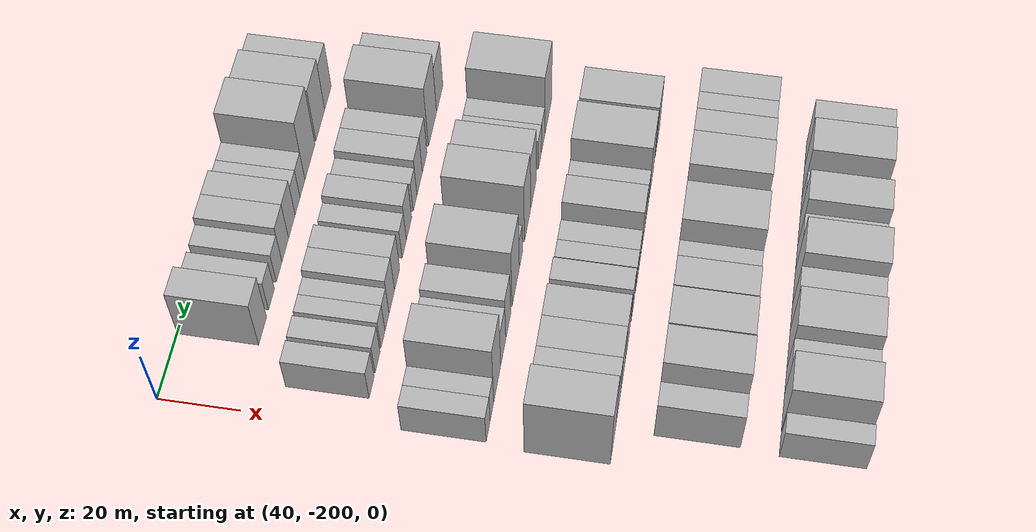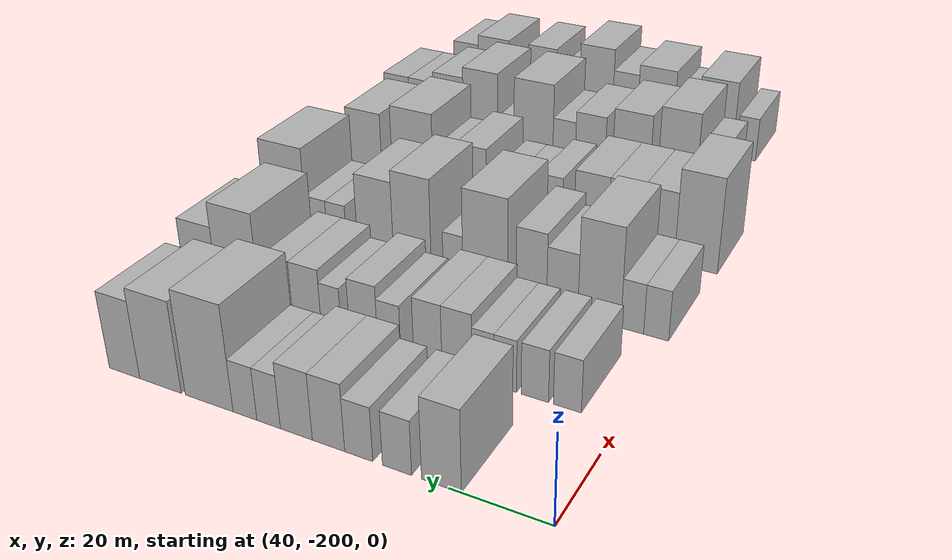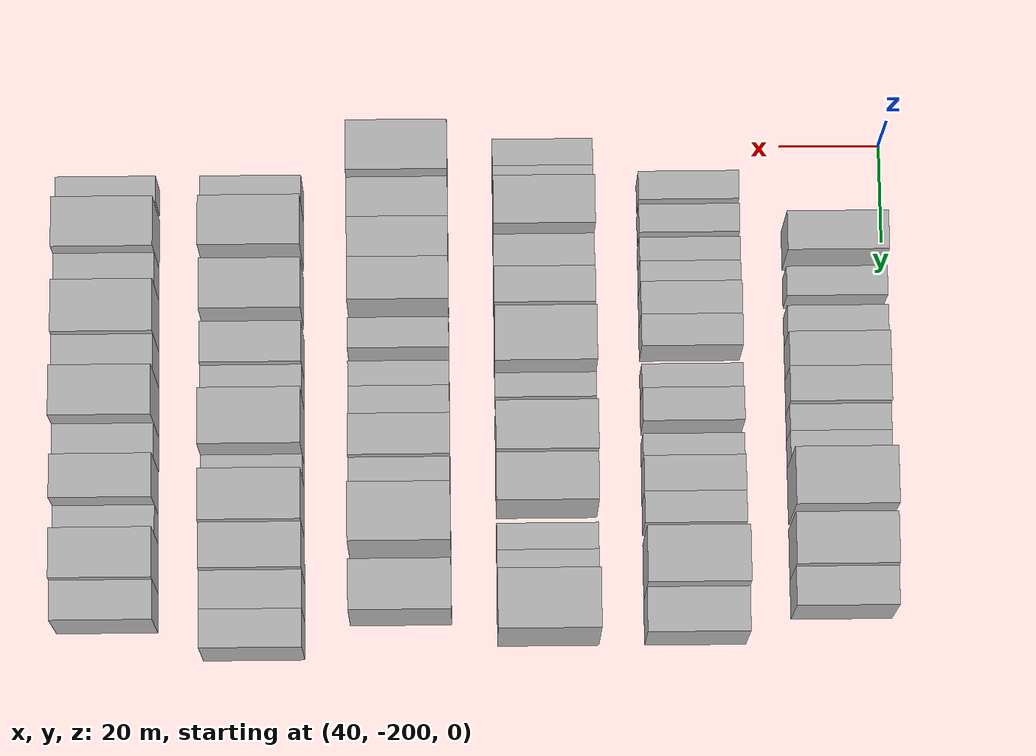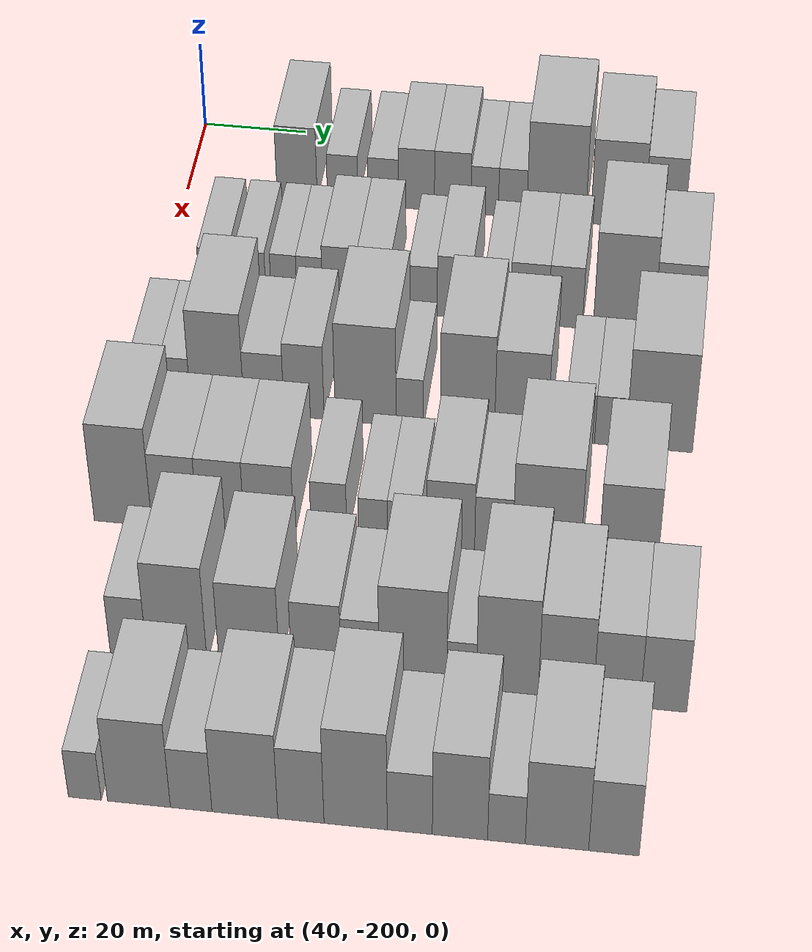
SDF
<sdf version="1.6">
 <world name="default">
  <model name="building_34">
   <static>1</static>
   <pose>50.0000 -178.4837 0 0.000000 0.000000 0.000000</pose>
   <link name="link">
    <pose>0 0 9.00 0 0 0</pose>
    <collision name="collision"><geometry><box><size>20.0000 7.8306 18.0000</size></box></geometry></collision>
    <visual name="visual">
     <cast_shadows>0</cast_shadows>
     <geometry><box><size>20.0000 7.8306 18.0000</size></box></geometry>
     <material>
      <script>
       <uri>model://HANNAS_wall/materials/scripts</uri>
       <uri>model://HANNAS_wall/materials/textures</uri>
       <name>vrc/HANNAS_wall</name>
      </script>
     </material>
    </visual>
   </link>
  </model>
  <model name="building_35">
   <static>1</static>
   <pose>50.0000 -169.5994 0 0.000000 0.000000 0.000000</pose>
   <link name="link">
    <pose>0 0 6.00 0 0 0</pose>
    <collision name="collision"><geometry><box><size>20.0000 5.9381 12.0000</size></box></geometry></collision>
    <visual name="visual">
     <cast_shadows>0</cast_shadows>
     <geometry><box><size>20.0000 5.9381 12.0000</size></box></geometry>
     <material>
      <script>
       <uri>model://HANNAS_wall/materials/scripts</uri>
       <uri>model://HANNAS_wall/materials/textures</uri>
       <name>vrc/HANNAS_wall</name>
      </script>
     </material>
    </visual>
   </link>
  </model>
  <model name="building_36">
   <static>1</static>
   <pose>50.0000 -161.6855 0 0.000000 0.000000 0.000000</pose>
   <link name="link">
    <pose>0 0 6.00 0 0 0</pose>
    <collision name="collision"><geometry><box><size>20.0000 5.8895 12.0000</size></box></geometry></collision>
    <visual name="visual">
     <cast_shadows>0</cast_shadows>
     <geometry><box><size>20.0000 5.8895 12.0000</size></box></geometry>
     <material>
      <script>
       <uri>model://HANNAS_wall/materials/scripts</uri>
       <uri>model://HANNAS_wall/materials/textures</uri>
       <name>vrc/HANNAS_wall</name>
      </script>
     </material>
    </visual>
   </link>
  </model>
  <model name="building_37">
   <static>1</static>
   <pose>50.0000 -155.2614 0 0.000000 0.000000 0.000000</pose>
   <link name="link">
    <pose>0 0 7.50 0 0 0</pose>
    <collision name="collision"><geometry><box><size>20.0000 6.9588 15.0000</size></box></geometry></collision>
    <visual name="visual">
     <cast_shadows>0</cast_shadows>
     <geometry><box><size>20.0000 6.9588 15.0000</size></box></geometry>
     <material>
      <script>
       <uri>model://HANNAS_wall/materials/scripts</uri>
       <uri>model://HANNAS_wall/materials/textures</uri>
       <name>vrc/HANNAS_wall</name>
      </script>
     </material>
    </visual>
   </link>
  </model>
  <model name="building_38">
   <static>1</static>
   <pose>50.0000 -148.2587 0 0.000000 0.000000 0.000000</pose>
   <link name="link">
    <pose>0 0 7.50 0 0 0</pose>
    <collision name="collision"><geometry><box><size>20.0000 7.0465 15.0000</size></box></geometry></collision>
    <visual name="visual">
     <cast_shadows>0</cast_shadows>
     <geometry><box><size>20.0000 7.0465 15.0000</size></box></geometry>
     <material>
      <script>
       <uri>model://HANNAS_wall/materials/scripts</uri>
       <uri>model://HANNAS_wall/materials/textures</uri>
       <name>vrc/HANNAS_wall</name>
      </script>
     </material>
    </visual>
   </link>
  </model>
  <model name="building_39">
   <static>1</static>
   <pose>50.0000 -142.0848 0 0.000000 0.000000 0.000000</pose>
   <link name="link">
    <pose>0 0 6.00 0 0 0</pose>
    <collision name="collision"><geometry><box><size>20.0000 5.3014 12.0000</size></box></geometry></collision>
    <visual name="visual">
     <cast_shadows>0</cast_shadows>
     <geometry><box><size>20.0000 5.3014 12.0000</size></box></geometry>
     <material>
      <script>
       <uri>model://HANNAS_wall/materials/scripts</uri>
       <uri>model://HANNAS_wall/materials/textures</uri>
       <name>vrc/HANNAS_wall</name>
      </script>
     </material>
    </visual>
   </link>
  </model>
  <model name="building_40">
   <static>1</static>
   <pose>50.0000 -136.6919 0 0.000000 0.000000 0.000000</pose>
   <link name="link">
    <pose>0 0 6.00 0 0 0</pose>
    <collision name="collision"><geometry><box><size>20.0000 5.4843 12.0000</size></box></geometry></collision>
    <visual name="visual">
     <cast_shadows>0</cast_shadows>
     <geometry><box><size>20.0000 5.4843 12.0000</size></box></geometry>
     <material>
      <script>
       <uri>model://HANNAS_wall/materials/scripts</uri>
       <uri>model://HANNAS_wall/materials/textures</uri>
       <name>vrc/HANNAS_wall</name>
      </script>
     </material>
    </visual>
   </link>
  </model>
  <model name="building_41">
   <static>1</static>
   <pose>50.0000 -128.2936 0 0.000000 0.000000 0.000000</pose>
   <link name="link">
    <pose>0 0 12.00 0 0 0</pose>
    <collision name="collision"><geometry><box><size>20.0000 11.3123 24.0000</size></box></geometry></collision>
    <visual name="visual">
     <cast_shadows>0</cast_shadows>
     <geometry><box><size>20.0000 11.3123 24.0000</size></box></geometry>
     <material>
      <script>
       <uri>model://HANNAS_wall/materials/scripts</uri>
       <uri>model://HANNAS_wall/materials/textures</uri>
       <name>vrc/HANNAS_wall</name>
      </script>
     </material>
    </visual>
   </link>
  </model>
  <model name="building_42">
   <static>1</static>
   <pose>50.0000 -116.5300 0 0.000000 0.000000 0.000000</pose>
   <link name="link">
    <pose>0 0 10.50 0 0 0</pose>
    <collision name="collision"><geometry><box><size>20.0000 10.2149 21.0000</size></box></geometry></collision>
    <visual name="visual">
     <cast_shadows>0</cast_shadows>
     <geometry><box><size>20.0000 10.2149 21.0000</size></box></geometry>
     <material>
      <script>
       <uri>model://HANNAS_wall/materials/scripts</uri>
       <uri>model://HANNAS_wall/materials/textures</uri>
       <name>vrc/HANNAS_wall</name>
      </script>
     </material>
    </visual>
   </link>
  </model>
  <model name="building_43">
   <static>1</static>
   <pose>50.0000 -107.5657 0 0.000000 0.000000 0.000000</pose>
   <link name="link">
    <pose>0 0 9.00 0 0 0</pose>
    <collision name="collision"><geometry><box><size>20.0000 7.7137 18.0000</size></box></geometry></collision>
    <visual name="visual">
     <cast_shadows>0</cast_shadows>
     <geometry><box><size>20.0000 7.7137 18.0000</size></box></geometry>
     <material>
      <script>
       <uri>model://HANNAS_wall/materials/scripts</uri>
       <uri>model://HANNAS_wall/materials/textures</uri>
       <name>vrc/HANNAS_wall</name>
      </script>
     </material>
    </visual>
   </link>
  </model>
  <model name="building_141">
   <static>1</static>
   <pose>79.0000 -189.4149 0 0.000000 0.000000 0.000000</pose>
   <link name="link">
    <pose>0 0 6.00 0 0 0</pose>
    <collision name="collision"><geometry><box><size>20.0000 5.7581 12.0000</size></box></geometry></collision>
    <visual name="visual">
     <cast_shadows>0</cast_shadows>
     <geometry><box><size>20.0000 5.7581 12.0000</size></box></geometry>
     <material>
      <script>
       <uri>model://HANNAS_wall/materials/scripts</uri>
       <uri>model://HANNAS_wall/materials/textures</uri>
       <name>vrc/HANNAS_wall</name>
      </script>
     </material>
    </visual>
   </link>
  </model>
  <model name="building_142">
   <static>1</static>
   <pose>79.0000 -182.6653 0 0.000000 0.000000 0.000000</pose>
   <link name="link">
    <pose>0 0 6.00 0 0 0</pose>
    <collision name="collision"><geometry><box><size>20.0000 5.7409 12.0000</size></box></geometry></collision>
    <visual name="visual">
     <cast_shadows>0</cast_shadows>
     <geometry><box><size>20.0000 5.7409 12.0000</size></box></geometry>
     <material>
      <script>
       <uri>model://HANNAS_wall/materials/scripts</uri>
       <uri>model://HANNAS_wall/materials/textures</uri>
       <name>vrc/HANNAS_wall</name>
      </script>
     </material>
    </visual>
   </link>
  </model>
  <model name="building_143">
   <static>1</static>
   <pose>79.0000 -176.3826 0 0.000000 0.000000 0.000000</pose>
   <link name="link">
    <pose>0 0 6.00 0 0 0</pose>
    <collision name="collision"><geometry><box><size>20.0000 4.8246 12.0000</size></box></geometry></collision>
    <visual name="visual">
     <cast_shadows>0</cast_shadows>
     <geometry><box><size>20.0000 4.8246 12.0000</size></box></geometry>
     <material>
      <script>
       <uri>model://HANNAS_wall/materials/scripts</uri>
       <uri>model://HANNAS_wall/materials/textures</uri>
       <name>vrc/HANNAS_wall</name>
      </script>
     </material>
    </visual>
   </link>
  </model>
  <model name="building_144">
   <static>1</static>
   <pose>79.0000 -171.5681 0 0.000000 0.000000 0.000000</pose>
   <link name="link">
    <pose>0 0 6.00 0 0 0</pose>
    <collision name="collision"><geometry><box><size>20.0000 4.8044 12.0000</size></box></geometry></collision>
    <visual name="visual">
     <cast_shadows>0</cast_shadows>
     <geometry><box><size>20.0000 4.8044 12.0000</size></box></geometry>
     <material>
      <script>
       <uri>model://HANNAS_wall/materials/scripts</uri>
       <uri>model://HANNAS_wall/materials/textures</uri>
       <name>vrc/HANNAS_wall</name>
      </script>
     </material>
    </visual>
   </link>
  </model>
  <model name="building_145">
   <static>1</static>
   <pose>79.0000 -165.8417 0 0.000000 0.000000 0.000000</pose>
   <link name="link">
    <pose>0 0 7.50 0 0 0</pose>
    <collision name="collision"><geometry><box><size>20.0000 6.6485 15.0000</size></box></geometry></collision>
    <visual name="visual">
     <cast_shadows>0</cast_shadows>
     <geometry><box><size>20.0000 6.6485 15.0000</size></box></geometry>
     <material>
      <script>
       <uri>model://HANNAS_wall/materials/scripts</uri>
       <uri>model://HANNAS_wall/materials/textures</uri>
       <name>vrc/HANNAS_wall</name>
      </script>
     </material>
    </visual>
   </link>
  </model>
  <model name="building_146">
   <static>1</static>
   <pose>79.0000 -159.3244 0 0.000000 0.000000 0.000000</pose>
   <link name="link">
    <pose>0 0 7.50 0 0 0</pose>
    <collision name="collision"><geometry><box><size>20.0000 6.3861 15.0000</size></box></geometry></collision>
    <visual name="visual">
     <cast_shadows>0</cast_shadows>
     <geometry><box><size>20.0000 6.3861 15.0000</size></box></geometry>
     <material>
      <script>
       <uri>model://HANNAS_wall/materials/scripts</uri>
       <uri>model://HANNAS_wall/materials/textures</uri>
       <name>vrc/HANNAS_wall</name>
      </script>
     </material>
    </visual>
   </link>
  </model>
  <model name="building_147">
   <static>1</static>
   <pose>79.0000 -150.4475 0 0.000000 0.000000 0.000000</pose>
   <link name="link">
    <pose>0 0 6.00 0 0 0</pose>
    <collision name="collision"><geometry><box><size>20.0000 5.3677 12.0000</size></box></geometry></collision>
    <visual name="visual">
     <cast_shadows>0</cast_shadows>
     <geometry><box><size>20.0000 5.3677 12.0000</size></box></geometry>
     <material>
      <script>
       <uri>model://HANNAS_wall/materials/scripts</uri>
       <uri>model://HANNAS_wall/materials/textures</uri>
       <name>vrc/HANNAS_wall</name>
      </script>
     </material>
    </visual>
   </link>
  </model>
  <model name="building_148">
   <static>1</static>
   <pose>79.0000 -144.4374 0 0.000000 0.000000 0.000000</pose>
   <link name="link">
    <pose>0 0 7.50 0 0 0</pose>
    <collision name="collision"><geometry><box><size>20.0000 6.6525 15.0000</size></box></geometry></collision>
    <visual name="visual">
     <cast_shadows>0</cast_shadows>
     <geometry><box><size>20.0000 6.6525 15.0000</size></box></geometry>
     <material>
      <script>
       <uri>model://HANNAS_wall/materials/scripts</uri>
       <uri>model://HANNAS_wall/materials/textures</uri>
       <name>vrc/HANNAS_wall</name>
      </script>
     </material>
    </visual>
   </link>
  </model>
  <model name="building_149">
   <static>1</static>
   <pose>79.0000 -136.6509 0 0.000000 0.000000 0.000000</pose>
   <link name="link">
    <pose>0 0 6.00 0 0 0</pose>
    <collision name="collision"><geometry><box><size>20.0000 4.9204 12.0000</size></box></geometry></collision>
    <visual name="visual">
     <cast_shadows>0</cast_shadows>
     <geometry><box><size>20.0000 4.9204 12.0000</size></box></geometry>
     <material>
      <script>
       <uri>model://HANNAS_wall/materials/scripts</uri>
       <uri>model://HANNAS_wall/materials/textures</uri>
       <name>vrc/HANNAS_wall</name>
      </script>
     </material>
    </visual>
   </link>
  </model>
  <model name="building_150">
   <static>1</static>
   <pose>79.0000 -130.6396 0 0.000000 0.000000 0.000000</pose>
   <link name="link">
    <pose>0 0 7.50 0 0 0</pose>
    <collision name="collision"><geometry><box><size>20.0000 7.1022 15.0000</size></box></geometry></collision>
    <visual name="visual">
     <cast_shadows>0</cast_shadows>
     <geometry><box><size>20.0000 7.1022 15.0000</size></box></geometry>
     <material>
      <script>
       <uri>model://HANNAS_wall/materials/scripts</uri>
       <uri>model://HANNAS_wall/materials/textures</uri>
       <name>vrc/HANNAS_wall</name>
      </script>
     </material>
    </visual>
   </link>
  </model>
  <model name="building_151">
   <static>1</static>
   <pose>79.0000 -123.9533 0 0.000000 0.000000 0.000000</pose>
   <link name="link">
    <pose>0 0 7.50 0 0 0</pose>
    <collision name="collision"><geometry><box><size>20.0000 6.2704 15.0000</size></box></geometry></collision>
    <visual name="visual">
     <cast_shadows>0</cast_shadows>
     <geometry><box><size>20.0000 6.2704 15.0000</size></box></geometry>
     <material>
      <script>
       <uri>model://HANNAS_wall/materials/scripts</uri>
       <uri>model://HANNAS_wall/materials/textures</uri>
       <name>vrc/HANNAS_wall</name>
      </script>
     </material>
    </visual>
   </link>
  </model>
  <model name="building_152">
   <static>1</static>
   <pose>79.0000 -113.2577 0 0.000000 0.000000 0.000000</pose>
   <link name="link">
    <pose>0 0 12.00 0 0 0</pose>
    <collision name="collision"><geometry><box><size>20.0000 11.1208 24.0000</size></box></geometry></collision>
    <visual name="visual">
     <cast_shadows>0</cast_shadows>
     <geometry><box><size>20.0000 11.1208 24.0000</size></box></geometry>
     <material>
      <script>
       <uri>model://HANNAS_wall/materials/scripts</uri>
       <uri>model://HANNAS_wall/materials/textures</uri>
       <name>vrc/HANNAS_wall</name>
      </script>
     </material>
    </visual>
   </link>
  </model>
  <model name="building_153">
   <static>1</static>
   <pose>79.0000 -103.2792 0 0.000000 0.000000 0.000000</pose>
   <link name="link">
    <pose>0 0 9.00 0 0 0</pose>
    <collision name="collision"><geometry><box><size>20.0000 8.8362 18.0000</size></box></geometry></collision>
    <visual name="visual">
     <cast_shadows>0</cast_shadows>
     <geometry><box><size>20.0000 8.8362 18.0000</size></box></geometry>
     <material>
      <script>
       <uri>model://HANNAS_wall/materials/scripts</uri>
       <uri>model://HANNAS_wall/materials/textures</uri>
       <name>vrc/HANNAS_wall</name>
      </script>
     </material>
    </visual>
   </link>
  </model>
  <model name="building_254">
   <static>1</static>
   <pose>108.0000 -196.4677 0 0.000000 0.000000 0.000000</pose>
   <link name="link">
    <pose>0 0 6.00 0 0 0</pose>
    <collision name="collision"><geometry><box><size>20.0000 5.4223 12.0000</size></box></geometry></collision>
    <visual name="visual">
     <cast_shadows>0</cast_shadows>
     <geometry><box><size>20.0000 5.4223 12.0000</size></box></geometry>
     <material>
      <script>
       <uri>model://HANNAS_wall/materials/scripts</uri>
       <uri>model://HANNAS_wall/materials/textures</uri>
       <name>vrc/HANNAS_wall</name>
      </script>
     </material>
    </visual>
   </link>
  </model>
  <model name="building_255">
   <static>1</static>
   <pose>108.0000 -191.2411 0 0.000000 0.000000 0.000000</pose>
   <link name="link">
    <pose>0 0 6.00 0 0 0</pose>
    <collision name="collision"><geometry><box><size>20.0000 5.0309 12.0000</size></box></geometry></collision>
    <visual name="visual">
     <cast_shadows>0</cast_shadows>
     <geometry><box><size>20.0000 5.0309 12.0000</size></box></geometry>
     <material>
      <script>
       <uri>model://HANNAS_wall/materials/scripts</uri>
       <uri>model://HANNAS_wall/materials/textures</uri>
       <name>vrc/HANNAS_wall</name>
      </script>
     </material>
    </visual>
   </link>
  </model>
  <model name="building_256">
   <static>1</static>
   <pose>108.0000 -183.8816 0 0.000000 0.000000 0.000000</pose>
   <link name="link">
    <pose>0 0 12.00 0 0 0</pose>
    <collision name="collision"><geometry><box><size>20.0000 9.6881 24.0000</size></box></geometry></collision>
    <visual name="visual">
     <cast_shadows>0</cast_shadows>
     <geometry><box><size>20.0000 9.6881 24.0000</size></box></geometry>
     <material>
      <script>
       <uri>model://HANNAS_wall/materials/scripts</uri>
       <uri>model://HANNAS_wall/materials/textures</uri>
       <name>vrc/HANNAS_wall</name>
      </script>
     </material>
    </visual>
   </link>
  </model>
  <model name="building_257">
   <static>1</static>
   <pose>108.0000 -175.4188 0 0.000000 0.000000 0.000000</pose>
   <link name="link">
    <pose>0 0 7.50 0 0 0</pose>
    <collision name="collision"><geometry><box><size>20.0000 7.2374 15.0000</size></box></geometry></collision>
    <visual name="visual">
     <cast_shadows>0</cast_shadows>
     <geometry><box><size>20.0000 7.2374 15.0000</size></box></geometry>
     <material>
      <script>
       <uri>model://HANNAS_wall/materials/scripts</uri>
       <uri>model://HANNAS_wall/materials/textures</uri>
       <name>vrc/HANNAS_wall</name>
      </script>
     </material>
    </visual>
   </link>
  </model>
  <model name="building_258">
   <static>1</static>
   <pose>108.0000 -168.1896 0 0.000000 0.000000 0.000000</pose>
   <link name="link">
    <pose>0 0 9.00 0 0 0</pose>
    <collision name="collision"><geometry><box><size>20.0000 7.2210 18.0000</size></box></geometry></collision>
    <visual name="visual">
     <cast_shadows>0</cast_shadows>
     <geometry><box><size>20.0000 7.2210 18.0000</size></box></geometry>
     <material>
      <script>
       <uri>model://HANNAS_wall/materials/scripts</uri>
       <uri>model://HANNAS_wall/materials/textures</uri>
       <name>vrc/HANNAS_wall</name>
      </script>
     </material>
    </visual>
   </link>
  </model>
  <model name="building_259">
   <static>1</static>
   <pose>108.0000 -157.1117 0 0.000000 0.000000 0.000000</pose>
   <link name="link">
    <pose>0 0 12.00 0 0 0</pose>
    <collision name="collision"><geometry><box><size>20.0000 10.9350 24.0000</size></box></geometry></collision>
    <visual name="visual">
     <cast_shadows>0</cast_shadows>
     <geometry><box><size>20.0000 10.9350 24.0000</size></box></geometry>
     <material>
      <script>
       <uri>model://HANNAS_wall/materials/scripts</uri>
       <uri>model://HANNAS_wall/materials/textures</uri>
       <name>vrc/HANNAS_wall</name>
      </script>
     </material>
    </visual>
   </link>
  </model>
  <model name="building_260">
   <static>1</static>
   <pose>108.0000 -149.1933 0 0.000000 0.000000 0.000000</pose>
   <link name="link">
    <pose>0 0 6.00 0 0 0</pose>
    <collision name="collision"><geometry><box><size>20.0000 4.9017 12.0000</size></box></geometry></collision>
    <visual name="visual">
     <cast_shadows>0</cast_shadows>
     <geometry><box><size>20.0000 4.9017 12.0000</size></box></geometry>
     <material>
      <script>
       <uri>model://HANNAS_wall/materials/scripts</uri>
       <uri>model://HANNAS_wall/materials/textures</uri>
       <name>vrc/HANNAS_wall</name>
      </script>
     </material>
    </visual>
   </link>
  </model>
  <model name="building_261">
   <static>1</static>
   <pose>108.0000 -138.8889 0 0.000000 0.000000 0.000000</pose>
   <link name="link">
    <pose>0 0 12.00 0 0 0</pose>
    <collision name="collision"><geometry><box><size>20.0000 9.7072 24.0000</size></box></geometry></collision>
    <visual name="visual">
     <cast_shadows>0</cast_shadows>
     <geometry><box><size>20.0000 9.7072 24.0000</size></box></geometry>
     <material>
      <script>
       <uri>model://HANNAS_wall/materials/scripts</uri>
       <uri>model://HANNAS_wall/materials/textures</uri>
       <name>vrc/HANNAS_wall</name>
      </script>
     </material>
    </visual>
   </link>
  </model>
  <model name="building_262">
   <static>1</static>
   <pose>108.0000 -129.2862 0 0.000000 0.000000 0.000000</pose>
   <link name="link">
    <pose>0 0 10.50 0 0 0</pose>
    <collision name="collision"><geometry><box><size>20.0000 9.4983 21.0000</size></box></geometry></collision>
    <visual name="visual">
     <cast_shadows>0</cast_shadows>
     <geometry><box><size>20.0000 9.4983 21.0000</size></box></geometry>
     <material>
      <script>
       <uri>model://HANNAS_wall/materials/scripts</uri>
       <uri>model://HANNAS_wall/materials/textures</uri>
       <name>vrc/HANNAS_wall</name>
      </script>
     </material>
    </visual>
   </link>
  </model>
  <model name="building_263">
   <static>1</static>
   <pose>108.0000 -118.9043 0 0.000000 0.000000 0.000000</pose>
   <link name="link">
    <pose>0 0 6.00 0 0 0</pose>
    <collision name="collision"><geometry><box><size>20.0000 5.2655 12.0000</size></box></geometry></collision>
    <visual name="visual">
     <cast_shadows>0</cast_shadows>
     <geometry><box><size>20.0000 5.2655 12.0000</size></box></geometry>
     <material>
      <script>
       <uri>model://HANNAS_wall/materials/scripts</uri>
       <uri>model://HANNAS_wall/materials/textures</uri>
       <name>vrc/HANNAS_wall</name>
      </script>
     </material>
    </visual>
   </link>
  </model>
  <model name="building_264">
   <static>1</static>
   <pose>108.0000 -113.4975 0 0.000000 0.000000 0.000000</pose>
   <link name="link">
    <pose>0 0 6.00 0 0 0</pose>
    <collision name="collision"><geometry><box><size>20.0000 5.5480 12.0000</size></box></geometry></collision>
    <visual name="visual">
     <cast_shadows>0</cast_shadows>
     <geometry><box><size>20.0000 5.5480 12.0000</size></box></geometry>
     <material>
      <script>
       <uri>model://HANNAS_wall/materials/scripts</uri>
       <uri>model://HANNAS_wall/materials/textures</uri>
       <name>vrc/HANNAS_wall</name>
      </script>
     </material>
    </visual>
   </link>
  </model>
  <model name="building_265">
   <static>1</static>
   <pose>108.0000 -104.8386 0 0.000000 0.000000 0.000000</pose>
   <link name="link">
    <pose>0 0 12.00 0 0 0</pose>
    <collision name="collision"><geometry><box><size>20.0000 11.7698 24.0000</size></box></geometry></collision>
    <visual name="visual">
     <cast_shadows>0</cast_shadows>
     <geometry><box><size>20.0000 11.7698 24.0000</size></box></geometry>
     <material>
      <script>
       <uri>model://HANNAS_wall/materials/scripts</uri>
       <uri>model://HANNAS_wall/materials/textures</uri>
       <name>vrc/HANNAS_wall</name>
      </script>
     </material>
    </visual>
   </link>
  </model>
  <model name="building_363">
   <static>1</static>
   <pose>137.0000 -195.2351 0 0.000000 0.000000 0.000000</pose>
   <link name="link">
    <pose>0 0 12.00 0 0 0</pose>
    <collision name="collision"><geometry><box><size>20.0000 10.0777 24.0000</size></box></geometry></collision>
    <visual name="visual">
     <cast_shadows>0</cast_shadows>
     <geometry><box><size>20.0000 10.0777 24.0000</size></box></geometry>
     <material>
      <script>
       <uri>model://HANNAS_wall/materials/scripts</uri>
       <uri>model://HANNAS_wall/materials/textures</uri>
       <name>vrc/HANNAS_wall</name>
      </script>
     </material>
    </visual>
   </link>
  </model>
  <model name="building_364">
   <static>1</static>
   <pose>137.0000 -186.1933 0 0.000000 0.000000 0.000000</pose>
   <link name="link">
    <pose>0 0 9.00 0 0 0</pose>
    <collision name="collision"><geometry><box><size>20.0000 8.0058 18.0000</size></box></geometry></collision>
    <visual name="visual">
     <cast_shadows>0</cast_shadows>
     <geometry><box><size>20.0000 8.0058 18.0000</size></box></geometry>
     <material>
      <script>
       <uri>model://HANNAS_wall/materials/scripts</uri>
       <uri>model://HANNAS_wall/materials/textures</uri>
       <name>vrc/HANNAS_wall</name>
      </script>
     </material>
    </visual>
   </link>
  </model>
  <model name="building_365">
   <static>1</static>
   <pose>137.0000 -178.1158 0 0.000000 0.000000 0.000000</pose>
   <link name="link">
    <pose>0 0 9.00 0 0 0</pose>
    <collision name="collision"><geometry><box><size>20.0000 8.1493 18.0000</size></box></geometry></collision>
    <visual name="visual">
     <cast_shadows>0</cast_shadows>
     <geometry><box><size>20.0000 8.1493 18.0000</size></box></geometry>
     <material>
      <script>
       <uri>model://HANNAS_wall/materials/scripts</uri>
       <uri>model://HANNAS_wall/materials/textures</uri>
       <name>vrc/HANNAS_wall</name>
      </script>
     </material>
    </visual>
   </link>
  </model>
  <model name="building_366">
   <static>1</static>
   <pose>137.0000 -169.7463 0 0.000000 0.000000 0.000000</pose>
   <link name="link">
    <pose>0 0 9.00 0 0 0</pose>
    <collision name="collision"><geometry><box><size>20.0000 8.5898 18.0000</size></box></geometry></collision>
    <visual name="visual">
     <cast_shadows>0</cast_shadows>
     <geometry><box><size>20.0000 8.5898 18.0000</size></box></geometry>
     <material>
      <script>
       <uri>model://HANNAS_wall/materials/scripts</uri>
       <uri>model://HANNAS_wall/materials/textures</uri>
       <name>vrc/HANNAS_wall</name>
      </script>
     </material>
    </visual>
   </link>
  </model>
  <model name="building_367">
   <static>1</static>
   <pose>137.0000 -159.3824 0 0.000000 0.000000 0.000000</pose>
   <link name="link">
    <pose>0 0 7.50 0 0 0</pose>
    <collision name="collision"><geometry><box><size>20.0000 6.1380 15.0000</size></box></geometry></collision>
    <visual name="visual">
     <cast_shadows>0</cast_shadows>
     <geometry><box><size>20.0000 6.1380 15.0000</size></box></geometry>
     <material>
      <script>
       <uri>model://HANNAS_wall/materials/scripts</uri>
       <uri>model://HANNAS_wall/materials/textures</uri>
       <name>vrc/HANNAS_wall</name>
      </script>
     </material>
    </visual>
   </link>
  </model>
  <model name="building_368">
   <static>1</static>
   <pose>137.0000 -151.8106 0 0.000000 0.000000 0.000000</pose>
   <link name="link">
    <pose>0 0 6.00 0 0 0</pose>
    <collision name="collision"><geometry><box><size>20.0000 5.0058 12.0000</size></box></geometry></collision>
    <visual name="visual">
     <cast_shadows>0</cast_shadows>
     <geometry><box><size>20.0000 5.0058 12.0000</size></box></geometry>
     <material>
      <script>
       <uri>model://HANNAS_wall/materials/scripts</uri>
       <uri>model://HANNAS_wall/materials/textures</uri>
       <name>vrc/HANNAS_wall</name>
      </script>
     </material>
    </visual>
   </link>
  </model>
  <model name="building_369">
   <static>1</static>
   <pose>137.0000 -146.4496 0 0.000000 0.000000 0.000000</pose>
   <link name="link">
    <pose>0 0 6.00 0 0 0</pose>
    <collision name="collision"><geometry><box><size>20.0000 5.7163 12.0000</size></box></geometry></collision>
    <visual name="visual">
     <cast_shadows>0</cast_shadows>
     <geometry><box><size>20.0000 5.7163 12.0000</size></box></geometry>
     <material>
      <script>
       <uri>model://HANNAS_wall/materials/scripts</uri>
       <uri>model://HANNAS_wall/materials/textures</uri>
       <name>vrc/HANNAS_wall</name>
      </script>
     </material>
    </visual>
   </link>
  </model>
  <model name="building_370">
   <static>1</static>
   <pose>137.0000 -138.4995 0 0.000000 0.000000 0.000000</pose>
   <link name="link">
    <pose>0 0 9.00 0 0 0</pose>
    <collision name="collision"><geometry><box><size>20.0000 8.1838 18.0000</size></box></geometry></collision>
    <visual name="visual">
     <cast_shadows>0</cast_shadows>
     <geometry><box><size>20.0000 8.1838 18.0000</size></box></geometry>
     <material>
      <script>
       <uri>model://HANNAS_wall/materials/scripts</uri>
       <uri>model://HANNAS_wall/materials/textures</uri>
       <name>vrc/HANNAS_wall</name>
      </script>
     </material>
    </visual>
   </link>
  </model>
  <model name="building_371">
   <static>1</static>
   <pose>137.0000 -131.1687 0 0.000000 0.000000 0.000000</pose>
   <link name="link">
    <pose>0 0 7.50 0 0 0</pose>
    <collision name="collision"><geometry><box><size>20.0000 6.4778 15.0000</size></box></geometry></collision>
    <visual name="visual">
     <cast_shadows>0</cast_shadows>
     <geometry><box><size>20.0000 6.4778 15.0000</size></box></geometry>
     <material>
      <script>
       <uri>model://HANNAS_wall/materials/scripts</uri>
       <uri>model://HANNAS_wall/materials/textures</uri>
       <name>vrc/HANNAS_wall</name>
      </script>
     </material>
    </visual>
   </link>
  </model>
  <model name="building_372">
   <static>1</static>
   <pose>137.0000 -122.1382 0 0.000000 0.000000 0.000000</pose>
   <link name="link">
    <pose>0 0 12.00 0 0 0</pose>
    <collision name="collision"><geometry><box><size>20.0000 11.5832 24.0000</size></box></geometry></collision>
    <visual name="visual">
     <cast_shadows>0</cast_shadows>
     <geometry><box><size>20.0000 11.5832 24.0000</size></box></geometry>
     <material>
      <script>
       <uri>model://HANNAS_wall/materials/scripts</uri>
       <uri>model://HANNAS_wall/materials/textures</uri>
       <name>vrc/HANNAS_wall</name>
      </script>
     </material>
    </visual>
   </link>
  </model>
  <model name="building_373">
   <static>1</static>
   <pose>137.0000 -108.3390 0 0.000000 0.000000 0.000000</pose>
   <link name="link">
    <pose>0 0 10.50 0 0 0</pose>
    <collision name="collision"><geometry><box><size>20.0000 10.0152 21.0000</size></box></geometry></collision>
    <visual name="visual">
     <cast_shadows>0</cast_shadows>
     <geometry><box><size>20.0000 10.0152 21.0000</size></box></geometry>
     <material>
      <script>
       <uri>model://HANNAS_wall/materials/scripts</uri>
       <uri>model://HANNAS_wall/materials/textures</uri>
       <name>vrc/HANNAS_wall</name>
      </script>
     </material>
    </visual>
   </link>
  </model>
  <model name="building_482">
   <static>1</static>
   <pose>166.0000 -188.4294 0 0.000000 0.000000 0.000000</pose>
   <link name="link">
    <pose>0 0 7.50 0 0 0</pose>
    <collision name="collision"><geometry><box><size>20.0000 6.1455 15.0000</size></box></geometry></collision>
    <visual name="visual">
     <cast_shadows>0</cast_shadows>
     <geometry><box><size>20.0000 6.1455 15.0000</size></box></geometry>
     <material>
      <script>
       <uri>model://HANNAS_wall/materials/scripts</uri>
       <uri>model://HANNAS_wall/materials/textures</uri>
       <name>vrc/HANNAS_wall</name>
      </script>
     </material>
    </visual>
   </link>
  </model>
  <model name="building_483">
   <static>1</static>
   <pose>166.0000 -180.3528 0 0.000000 0.000000 0.000000</pose>
   <link name="link">
    <pose>0 0 12.00 0 0 0</pose>
    <collision name="collision"><geometry><box><size>20.0000 10.0078 24.0000</size></box></geometry></collision>
    <visual name="visual">
     <cast_shadows>0</cast_shadows>
     <geometry><box><size>20.0000 10.0078 24.0000</size></box></geometry>
     <material>
      <script>
       <uri>model://HANNAS_wall/materials/scripts</uri>
       <uri>model://HANNAS_wall/materials/textures</uri>
       <name>vrc/HANNAS_wall</name>
      </script>
     </material>
    </visual>
   </link>
  </model>
  <model name="building_484">
   <static>1</static>
   <pose>166.0000 -168.3302 0 0.000000 0.000000 0.000000</pose>
   <link name="link">
    <pose>0 0 10.50 0 0 0</pose>
    <collision name="collision"><geometry><box><size>20.0000 10.0374 21.0000</size></box></geometry></collision>
    <visual name="visual">
     <cast_shadows>0</cast_shadows>
     <geometry><box><size>20.0000 10.0374 21.0000</size></box></geometry>
     <material>
      <script>
       <uri>model://HANNAS_wall/materials/scripts</uri>
       <uri>model://HANNAS_wall/materials/textures</uri>
       <name>vrc/HANNAS_wall</name>
      </script>
     </material>
    </visual>
   </link>
  </model>
  <model name="building_485">
   <static>1</static>
   <pose>166.0000 -157.2216 0 0.000000 0.000000 0.000000</pose>
   <link name="link">
    <pose>0 0 9.00 0 0 0</pose>
    <collision name="collision"><geometry><box><size>20.0000 8.1797 18.0000</size></box></geometry></collision>
    <visual name="visual">
     <cast_shadows>0</cast_shadows>
     <geometry><box><size>20.0000 8.1797 18.0000</size></box></geometry>
     <material>
      <script>
       <uri>model://HANNAS_wall/materials/scripts</uri>
       <uri>model://HANNAS_wall/materials/textures</uri>
       <name>vrc/HANNAS_wall</name>
      </script>
     </material>
    </visual>
   </link>
  </model>
  <model name="building_486">
   <static>1</static>
   <pose>166.0000 -149.9948 0 0.000000 0.000000 0.000000</pose>
   <link name="link">
    <pose>0 0 7.50 0 0 0</pose>
    <collision name="collision"><geometry><box><size>20.0000 6.2739 15.0000</size></box></geometry></collision>
    <visual name="visual">
     <cast_shadows>0</cast_shadows>
     <geometry><box><size>20.0000 6.2739 15.0000</size></box></geometry>
     <material>
      <script>
       <uri>model://HANNAS_wall/materials/scripts</uri>
       <uri>model://HANNAS_wall/materials/textures</uri>
       <name>vrc/HANNAS_wall</name>
      </script>
     </material>
    </visual>
   </link>
  </model>
  <model name="building_487">
   <static>1</static>
   <pose>166.0000 -141.2984 0 0.000000 0.000000 0.000000</pose>
   <link name="link">
    <pose>0 0 12.00 0 0 0</pose>
    <collision name="collision"><geometry><box><size>20.0000 11.1190 24.0000</size></box></geometry></collision>
    <visual name="visual">
     <cast_shadows>0</cast_shadows>
     <geometry><box><size>20.0000 11.1190 24.0000</size></box></geometry>
     <material>
      <script>
       <uri>model://HANNAS_wall/materials/scripts</uri>
       <uri>model://HANNAS_wall/materials/textures</uri>
       <name>vrc/HANNAS_wall</name>
      </script>
     </material>
    </visual>
   </link>
  </model>
  <model name="building_488">
   <static>1</static>
   <pose>166.0000 -133.3281 0 0.000000 0.000000 0.000000</pose>
   <link name="link">
    <pose>0 0 6.00 0 0 0</pose>
    <collision name="collision"><geometry><box><size>20.0000 4.8215 12.0000</size></box></geometry></collision>
    <visual name="visual">
     <cast_shadows>0</cast_shadows>
     <geometry><box><size>20.0000 4.8215 12.0000</size></box></geometry>
     <material>
      <script>
       <uri>model://HANNAS_wall/materials/scripts</uri>
       <uri>model://HANNAS_wall/materials/textures</uri>
       <name>vrc/HANNAS_wall</name>
      </script>
     </material>
    </visual>
   </link>
  </model>
  <model name="building_489">
   <static>1</static>
   <pose>166.0000 -125.8550 0 0.000000 0.000000 0.000000</pose>
   <link name="link">
    <pose>0 0 12.00 0 0 0</pose>
    <collision name="collision"><geometry><box><size>20.0000 10.1248 24.0000</size></box></geometry></collision>
    <visual name="visual">
     <cast_shadows>0</cast_shadows>
     <geometry><box><size>20.0000 10.1248 24.0000</size></box></geometry>
     <material>
      <script>
       <uri>model://HANNAS_wall/materials/scripts</uri>
       <uri>model://HANNAS_wall/materials/textures</uri>
       <name>vrc/HANNAS_wall</name>
      </script>
     </material>
    </visual>
   </link>
  </model>
  <model name="building_490">
   <static>1</static>
   <pose>166.0000 -116.3209 0 0.000000 0.000000 0.000000</pose>
   <link name="link">
    <pose>0 0 10.50 0 0 0</pose>
    <collision name="collision"><geometry><box><size>20.0000 8.9433 21.0000</size></box></geometry></collision>
    <visual name="visual">
     <cast_shadows>0</cast_shadows>
     <geometry><box><size>20.0000 8.9433 21.0000</size></box></geometry>
     <material>
      <script>
       <uri>model://HANNAS_wall/materials/scripts</uri>
       <uri>model://HANNAS_wall/materials/textures</uri>
       <name>vrc/HANNAS_wall</name>
      </script>
     </material>
    </visual>
   </link>
  </model>
  <model name="building_491">
   <static>1</static>
   <pose>166.0000 -108.0397 0 0.000000 0.000000 0.000000</pose>
   <link name="link">
    <pose>0 0 9.00 0 0 0</pose>
    <collision name="collision"><geometry><box><size>20.0000 7.6193 18.0000</size></box></geometry></collision>
    <visual name="visual">
     <cast_shadows>0</cast_shadows>
     <geometry><box><size>20.0000 7.6193 18.0000</size></box></geometry>
     <material>
      <script>
       <uri>model://HANNAS_wall/materials/scripts</uri>
       <uri>model://HANNAS_wall/materials/textures</uri>
       <name>vrc/HANNAS_wall</name>
      </script>
     </material>
    </visual>
   </link>
  </model>
  <model name="building_492">
   <static>1</static>
   <pose>166.0000 -100.4372 0 0.000000 0.000000 0.000000</pose>
   <link name="link">
    <pose>0 0 9.00 0 0 0</pose>
    <collision name="collision"><geometry><box><size>20.0000 7.5856 18.0000</size></box></geometry></collision>
    <visual name="visual">
     <cast_shadows>0</cast_shadows>
     <geometry><box><size>20.0000 7.5856 18.0000</size></box></geometry>
     <material>
      <script>
       <uri>model://HANNAS_wall/materials/scripts</uri>
       <uri>model://HANNAS_wall/materials/textures</uri>
       <name>vrc/HANNAS_wall</name>
      </script>
     </material>
    </visual>
   </link>
  </model>
  <model name="building_598">
   <static>1</static>
   <pose>195.0000 -189.7219 0 0.000000 0.000000 0.000000</pose>
   <link name="link">
    <pose>0 0 6.00 0 0 0</pose>
    <collision name="collision"><geometry><box><size>20.0000 5.2707 12.0000</size></box></geometry></collision>
    <visual name="visual">
     <cast_shadows>0</cast_shadows>
     <geometry><box><size>20.0000 5.2707 12.0000</size></box></geometry>
     <material>
      <script>
       <uri>model://HANNAS_wall/materials/scripts</uri>
       <uri>model://HANNAS_wall/materials/textures</uri>
       <name>vrc/HANNAS_wall</name>
      </script>
     </material>
    </visual>
   </link>
  </model>
  <model name="building_599">
   <static>1</static>
   <pose>195.0000 -181.0568 0 0.000000 0.000000 0.000000</pose>
   <link name="link">
    <pose>0 0 10.50 0 0 0</pose>
    <collision name="collision"><geometry><box><size>20.0000 10.0594 21.0000</size></box></geometry></collision>
    <visual name="visual">
     <cast_shadows>0</cast_shadows>
     <geometry><box><size>20.0000 10.0594 21.0000</size></box></geometry>
     <material>
      <script>
       <uri>model://HANNAS_wall/materials/scripts</uri>
       <uri>model://HANNAS_wall/materials/textures</uri>
       <name>vrc/HANNAS_wall</name>
      </script>
     </material>
    </visual>
   </link>
  </model>
  <model name="building_600">
   <static>1</static>
   <pose>195.0000 -172.7180 0 0.000000 0.000000 0.000000</pose>
   <link name="link">
    <pose>0 0 7.50 0 0 0</pose>
    <collision name="collision"><geometry><box><size>20.0000 6.6183 15.0000</size></box></geometry></collision>
    <visual name="visual">
     <cast_shadows>0</cast_shadows>
     <geometry><box><size>20.0000 6.6183 15.0000</size></box></geometry>
     <material>
      <script>
       <uri>model://HANNAS_wall/materials/scripts</uri>
       <uri>model://HANNAS_wall/materials/textures</uri>
       <name>vrc/HANNAS_wall</name>
      </script>
     </material>
    </visual>
   </link>
  </model>
  <model name="building_601">
   <static>1</static>
   <pose>195.0000 -164.1736 0 0.000000 0.000000 0.000000</pose>
   <link name="link">
    <pose>0 0 10.50 0 0 0</pose>
    <collision name="collision"><geometry><box><size>20.0000 10.4705 21.0000</size></box></geometry></collision>
    <visual name="visual">
     <cast_shadows>0</cast_shadows>
     <geometry><box><size>20.0000 10.4705 21.0000</size></box></geometry>
     <material>
      <script>
       <uri>model://HANNAS_wall/materials/scripts</uri>
       <uri>model://HANNAS_wall/materials/textures</uri>
       <name>vrc/HANNAS_wall</name>
      </script>
     </material>
    </visual>
   </link>
  </model>
  <model name="building_602">
   <static>1</static>
   <pose>195.0000 -155.2899 0 0.000000 0.000000 0.000000</pose>
   <link name="link">
    <pose>0 0 9.00 0 0 0</pose>
    <collision name="collision"><geometry><box><size>20.0000 7.2967 18.0000</size></box></geometry></collision>
    <visual name="visual">
     <cast_shadows>0</cast_shadows>
     <geometry><box><size>20.0000 7.2967 18.0000</size></box></geometry>
     <material>
      <script>
       <uri>model://HANNAS_wall/materials/scripts</uri>
       <uri>model://HANNAS_wall/materials/textures</uri>
       <name>vrc/HANNAS_wall</name>
      </script>
     </material>
    </visual>
   </link>
  </model>
  <model name="building_603">
   <static>1</static>
   <pose>195.0000 -146.6625 0 0.000000 0.000000 0.000000</pose>
   <link name="link">
    <pose>0 0 12.00 0 0 0</pose>
    <collision name="collision"><geometry><box><size>20.0000 9.9581 24.0000</size></box></geometry></collision>
    <visual name="visual">
     <cast_shadows>0</cast_shadows>
     <geometry><box><size>20.0000 9.9581 24.0000</size></box></geometry>
     <material>
      <script>
       <uri>model://HANNAS_wall/materials/scripts</uri>
       <uri>model://HANNAS_wall/materials/textures</uri>
       <name>vrc/HANNAS_wall</name>
      </script>
     </material>
    </visual>
   </link>
  </model>
  <model name="building_604">
   <static>1</static>
   <pose>195.0000 -138.1430 0 0.000000 0.000000 0.000000</pose>
   <link name="link">
    <pose>0 0 7.50 0 0 0</pose>
    <collision name="collision"><geometry><box><size>20.0000 7.0809 15.0000</size></box></geometry></collision>
    <visual name="visual">
     <cast_shadows>0</cast_shadows>
     <geometry><box><size>20.0000 7.0809 15.0000</size></box></geometry>
     <material>
      <script>
       <uri>model://HANNAS_wall/materials/scripts</uri>
       <uri>model://HANNAS_wall/materials/textures</uri>
       <name>vrc/HANNAS_wall</name>
      </script>
     </material>
    </visual>
   </link>
  </model>
  <model name="building_605">
   <static>1</static>
   <pose>195.0000 -130.2723 0 0.000000 0.000000 0.000000</pose>
   <link name="link">
    <pose>0 0 10.50 0 0 0</pose>
    <collision name="collision"><geometry><box><size>20.0000 8.6607 21.0000</size></box></geometry></collision>
    <visual name="visual">
     <cast_shadows>0</cast_shadows>
     <geometry><box><size>20.0000 8.6607 21.0000</size></box></geometry>
     <material>
      <script>
       <uri>model://HANNAS_wall/materials/scripts</uri>
       <uri>model://HANNAS_wall/materials/textures</uri>
       <name>vrc/HANNAS_wall</name>
      </script>
     </material>
    </visual>
   </link>
  </model>
  <model name="building_606">
   <static>1</static>
   <pose>195.0000 -123.0029 0 0.000000 0.000000 0.000000</pose>
   <link name="link">
    <pose>0 0 6.00 0 0 0</pose>
    <collision name="collision"><geometry><box><size>20.0000 5.8780 12.0000</size></box></geometry></collision>
    <visual name="visual">
     <cast_shadows>0</cast_shadows>
     <geometry><box><size>20.0000 5.8780 12.0000</size></box></geometry>
     <material>
      <script>
       <uri>model://HANNAS_wall/materials/scripts</uri>
       <uri>model://HANNAS_wall/materials/textures</uri>
       <name>vrc/HANNAS_wall</name>
      </script>
     </material>
    </visual>
   </link>
  </model>
  <model name="building_607">
   <static>1</static>
   <pose>195.0000 -115.1287 0 0.000000 0.000000 0.000000</pose>
   <link name="link">
    <pose>0 0 10.50 0 0 0</pose>
    <collision name="collision"><geometry><box><size>20.0000 9.8704 21.0000</size></box></geometry></collision>
    <visual name="visual">
     <cast_shadows>0</cast_shadows>
     <geometry><box><size>20.0000 9.8704 21.0000</size></box></geometry>
     <material>
      <script>
       <uri>model://HANNAS_wall/materials/scripts</uri>
       <uri>model://HANNAS_wall/materials/textures</uri>
       <name>vrc/HANNAS_wall</name>
      </script>
     </material>
    </visual>
   </link>
  </model>
  <model name="building_608">
   <static>1</static>
   <pose>195.0000 -106.2747 0 0.000000 0.000000 0.000000</pose>
   <link name="link">
    <pose>0 0 9.00 0 0 0</pose>
    <collision name="collision"><geometry><box><size>20.0000 7.8376 18.0000</size></box></geometry></collision>
    <visual name="visual">
     <cast_shadows>0</cast_shadows>
     <geometry><box><size>20.0000 7.8376 18.0000</size></box></geometry>
     <material>
      <script>
       <uri>model://HANNAS_wall/materials/scripts</uri>
       <uri>model://HANNAS_wall/materials/textures</uri>
       <name>vrc/HANNAS_wall</name>
      </script>
     </material>
    </visual>
   </link>
  </model>
 </world>
</sdf>
